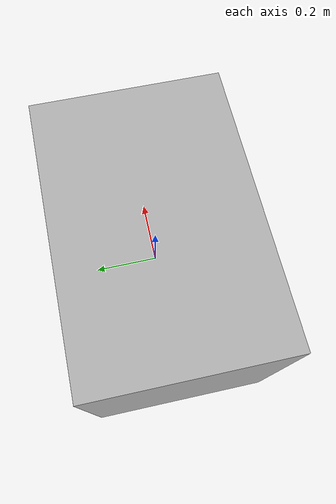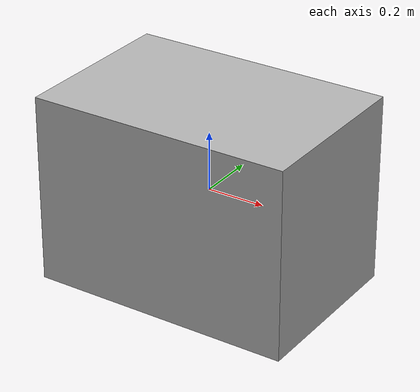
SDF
<?xml version="1.0" ?>
<sdf version="1.7">
  <model name="concrete_block">
    <static>false</static>
    <pose>0 0 0 0 0 0</pose>

    <link name="body">
      <inertial>
        <mass>50.0</mass>
        <inertia>
          <ixx>0.54166667</ixx>
          <iyy>1.66666667</iyy>
          <izz>1.875</izz>
          <ixy>0.0</ixy>
          <ixz>0.0</ixz>
          <iyz>0.0</iyz>
        </inertia>
      </inertial>

      <collision name="collision">
        <geometry>
          <box>
            <size>0.9 0.6 0.65</size>
          </box>
        </geometry>
        <surface>
          <friction>
            <ode>
              <mu>1.0</mu>
              <mu2>1.0</mu2>
            </ode>
          </friction>
        </surface>
      </collision>

      <visual name="visual">
        <geometry>
          <box>
            <size>0.9 0.6 0.65</size>
          </box>
        </geometry>
        <material>
          <ambient>0.6 0.6 0.6 1</ambient>
          <diffuse>0.7 0.7 0.7 1</diffuse>
          <specular>0.3 0.3 0.3 1</specular>
          <emissive>0.0 0.0 0.0 1</emissive>
        </material>
      </visual>

    </link>
  </model>
</sdf>
